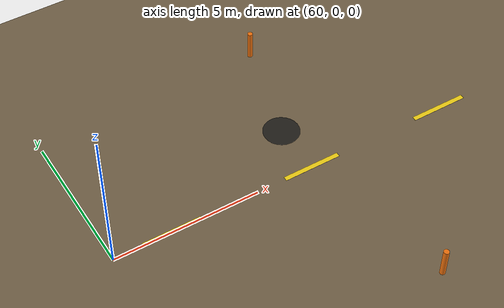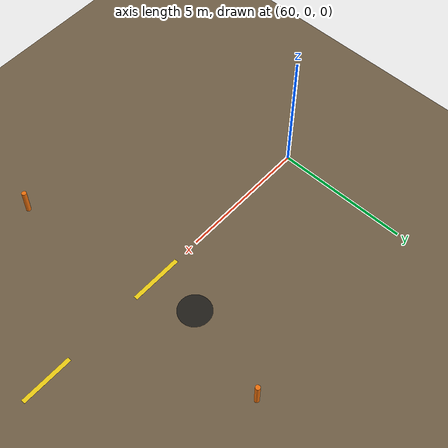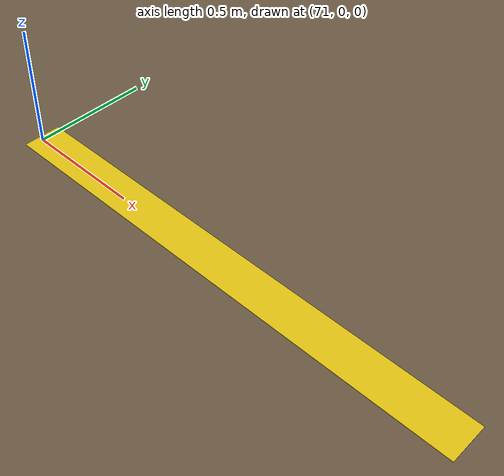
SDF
<sdf version="1.6">
 <world name="pothole_road">
  <include><uri>model://sun</uri></include>
  <model name="ground">
   <static>true</static>
   <link name="link">
    <collision name="c">
     <geometry><plane><normal>0 0 1</normal><size>400 400</size></plane></geometry>
     <surface><friction><ode><mu>1.0</mu><mu2>1.0</mu2></ode></friction></surface>
    </collision>
    <visual name="v">
     <geometry><plane><normal>0 0 1</normal><size>400 400</size></plane></geometry>
     <material><ambient>0.35 0.30 0.22 1</ambient><diffuse>0.45 0.38 0.28 1</diffuse></material>
    </visual>
   </link>
  </model>
  <model name="lane_dash_12">
   <static>true</static>
   <pose>62.0 0 0.0210 0 0 0</pose>
   <link name="link">
    <visual name="v">
     <geometry><box><size>2.0 0.16 0.002</size></box></geometry>
     <material><ambient>0.75 0.65 0.05 1</ambient><diffuse>0.95 0.82 0.08 1</diffuse></material>
    </visual>
   </link>
  </model>
  <model name="lane_dash_13">
   <static>true</static>
   <pose>67.0 0 0.0210 0 0 0</pose>
   <link name="link">
    <visual name="v">
     <geometry><box><size>2.0 0.16 0.002</size></box></geometry>
     <material><ambient>0.75 0.65 0.05 1</ambient><diffuse>0.95 0.82 0.08 1</diffuse></material>
    </visual>
   </link>
  </model>
  <model name="lane_dash_14">
   <static>true</static>
   <pose>72.0 0 0.0210 0 0 0</pose>
   <link name="link">
    <visual name="v">
     <geometry><box><size>2.0 0.16 0.002</size></box></geometry>
     <material><ambient>0.75 0.65 0.05 1</ambient><diffuse>0.95 0.82 0.08 1</diffuse></material>
    </visual>
   </link>
  </model>
  <model name="pothole_7">
   <static>true</static>
   <pose>67.0 1.8 0.02 0 0 0</pose>
   <link name="link">
    <visual name="floor">
     <pose>0 0 -0.1300 0 0 0</pose>
     <geometry><cylinder><radius>0.550</radius><length>0.004</length></cylinder></geometry>
     <material>
      <ambient>0.03 0.025 0.02 1</ambient>
      <diffuse>0.05 0.04 0.03 1</diffuse>
      <specular>0 0 0 1</specular>
     </material>
    </visual>
    <collision name="floor_c">
     <pose>0 0 -0.1300 0 0 0</pose>
     <geometry><cylinder><radius>0.550</radius><length>0.004</length></cylinder></geometry>
    </collision>
    <visual name="wall_0">
     <pose>0.5500 0.0000 -0.0650 0 0 0.0000</pose>
     <geometry><box><size>0.02 0.2700 0.1300</size></box></geometry>
     <material><ambient>0.06 0.05 0.04 1</ambient><diffuse>0.08 0.07 0.05 1</diffuse></material>
    </visual>
    <visual name="wall_1">
     <pose>0.5081 0.2105 -0.0650 0 0 0.3927</pose>
     <geometry><box><size>0.02 0.2700 0.1300</size></box></geometry>
     <material><ambient>0.06 0.05 0.04 1</ambient><diffuse>0.08 0.07 0.05 1</diffuse></material>
    </visual>
    <visual name="wall_2">
     <pose>0.3889 0.3889 -0.0650 0 0 0.7854</pose>
     <geometry><box><size>0.02 0.2700 0.1300</size></box></geometry>
     <material><ambient>0.06 0.05 0.04 1</ambient><diffuse>0.08 0.07 0.05 1</diffuse></material>
    </visual>
    <visual name="wall_3">
     <pose>0.2105 0.5081 -0.0650 0 0 1.1781</pose>
     <geometry><box><size>0.02 0.2700 0.1300</size></box></geometry>
     <material><ambient>0.06 0.05 0.04 1</ambient><diffuse>0.08 0.07 0.05 1</diffuse></material>
    </visual>
    <visual name="wall_4">
     <pose>0.0000 0.5500 -0.0650 0 0 1.5708</pose>
     <geometry><box><size>0.02 0.2700 0.1300</size></box></geometry>
     <material><ambient>0.06 0.05 0.04 1</ambient><diffuse>0.08 0.07 0.05 1</diffuse></material>
    </visual>
    <visual name="wall_5">
     <pose>-0.2105 0.5081 -0.0650 0 0 1.9635</pose>
     <geometry><box><size>0.02 0.2700 0.1300</size></box></geometry>
     <material><ambient>0.06 0.05 0.04 1</ambient><diffuse>0.08 0.07 0.05 1</diffuse></material>
    </visual>
    <visual name="wall_6">
     <pose>-0.3889 0.3889 -0.0650 0 0 2.3562</pose>
     <geometry><box><size>0.02 0.2700 0.1300</size></box></geometry>
     <material><ambient>0.06 0.05 0.04 1</ambient><diffuse>0.08 0.07 0.05 1</diffuse></material>
    </visual>
    <visual name="wall_7">
     <pose>-0.5081 0.2105 -0.0650 0 0 2.7489</pose>
     <geometry><box><size>0.02 0.2700 0.1300</size></box></geometry>
     <material><ambient>0.06 0.05 0.04 1</ambient><diffuse>0.08 0.07 0.05 1</diffuse></material>
    </visual>
    <visual name="wall_8">
     <pose>-0.5500 0.0000 -0.0650 0 0 3.1416</pose>
     <geometry><box><size>0.02 0.2700 0.1300</size></box></geometry>
     <material><ambient>0.06 0.05 0.04 1</ambient><diffuse>0.08 0.07 0.05 1</diffuse></material>
    </visual>
    <visual name="wall_9">
     <pose>-0.5081 -0.2105 -0.0650 0 0 3.5343</pose>
     <geometry><box><size>0.02 0.2700 0.1300</size></box></geometry>
     <material><ambient>0.06 0.05 0.04 1</ambient><diffuse>0.08 0.07 0.05 1</diffuse></material>
    </visual>
    <visual name="wall_10">
     <pose>-0.3889 -0.3889 -0.0650 0 0 3.9270</pose>
     <geometry><box><size>0.02 0.2700 0.1300</size></box></geometry>
     <material><ambient>0.06 0.05 0.04 1</ambient><diffuse>0.08 0.07 0.05 1</diffuse></material>
    </visual>
    <visual name="wall_11">
     <pose>-0.2105 -0.5081 -0.0650 0 0 4.3197</pose>
     <geometry><box><size>0.02 0.2700 0.1300</size></box></geometry>
     <material><ambient>0.06 0.05 0.04 1</ambient><diffuse>0.08 0.07 0.05 1</diffuse></material>
    </visual>
    <visual name="wall_12">
     <pose>-0.0000 -0.5500 -0.0650 0 0 4.7124</pose>
     <geometry><box><size>0.02 0.2700 0.1300</size></box></geometry>
     <material><ambient>0.06 0.05 0.04 1</ambient><diffuse>0.08 0.07 0.05 1</diffuse></material>
    </visual>
    <visual name="wall_13">
     <pose>0.2105 -0.5081 -0.0650 0 0 5.1051</pose>
     <geometry><box><size>0.02 0.2700 0.1300</size></box></geometry>
     <material><ambient>0.06 0.05 0.04 1</ambient><diffuse>0.08 0.07 0.05 1</diffuse></material>
    </visual>
    <visual name="wall_14">
     <pose>0.3889 -0.3889 -0.0650 0 0 5.4978</pose>
     <geometry><box><size>0.02 0.2700 0.1300</size></box></geometry>
     <material><ambient>0.06 0.05 0.04 1</ambient><diffuse>0.08 0.07 0.05 1</diffuse></material>
    </visual>
    <visual name="wall_15">
     <pose>0.5081 -0.2105 -0.0650 0 0 5.8905</pose>
     <geometry><box><size>0.02 0.2700 0.1300</size></box></geometry>
     <material><ambient>0.06 0.05 0.04 1</ambient><diffuse>0.08 0.07 0.05 1</diffuse></material>
    </visual>
    <visual name="rim">
     <pose>0 0 0.0025 0 0 0</pose>
     <geometry><cylinder><radius>0.616</radius><length>0.003</length></cylinder></geometry>
     <material><ambient>0.10 0.09 0.08 1</ambient><diffuse>0.13 0.12 0.10 1</diffuse></material>
    </visual>
   </link>
  </model>
  <model name="bollard_10">
   <static>true</static>
   <pose>68 5.4 0.5 0 0 0</pose>
   <link name="link">
    <collision name="c">
     <geometry><cylinder><radius>0.09</radius><length>1.0</length></cylinder></geometry>
    </collision>
    <visual name="v">
     <geometry><cylinder><radius>0.09</radius><length>1.0</length></cylinder></geometry>
     <material><ambient>0.8 0.35 0.0 1</ambient><diffuse>0.95 0.45 0.05 1</diffuse></material>
    </visual>
   </link>
  </model>
  <model name="bollard_11">
   <static>true</static>
   <pose>68 -5.4 0.5 0 0 0</pose>
   <link name="link">
    <collision name="c">
     <geometry><cylinder><radius>0.09</radius><length>1.0</length></cylinder></geometry>
    </collision>
    <visual name="v">
     <geometry><cylinder><radius>0.09</radius><length>1.0</length></cylinder></geometry>
     <material><ambient>0.8 0.35 0.0 1</ambient><diffuse>0.95 0.45 0.05 1</diffuse></material>
    </visual>
   </link>
  </model>
 </world>
</sdf>
